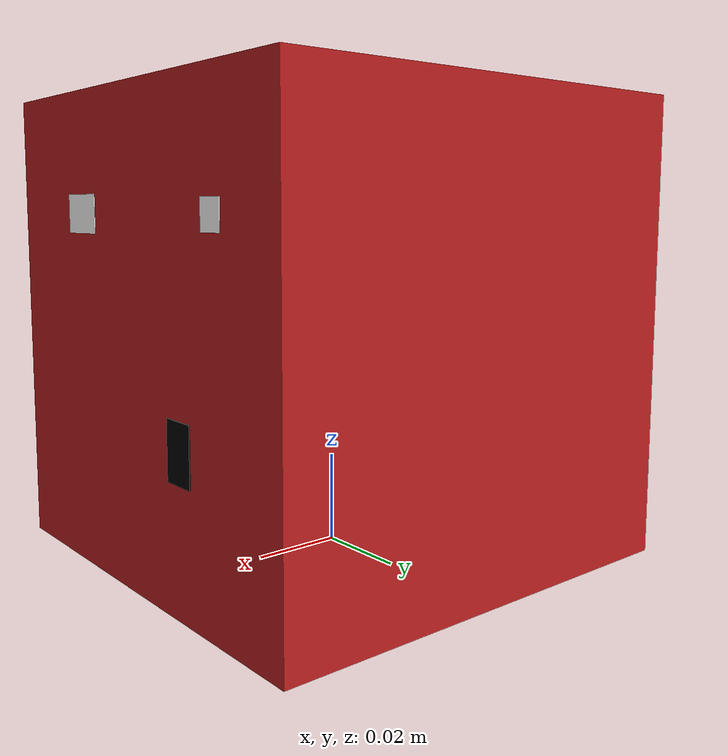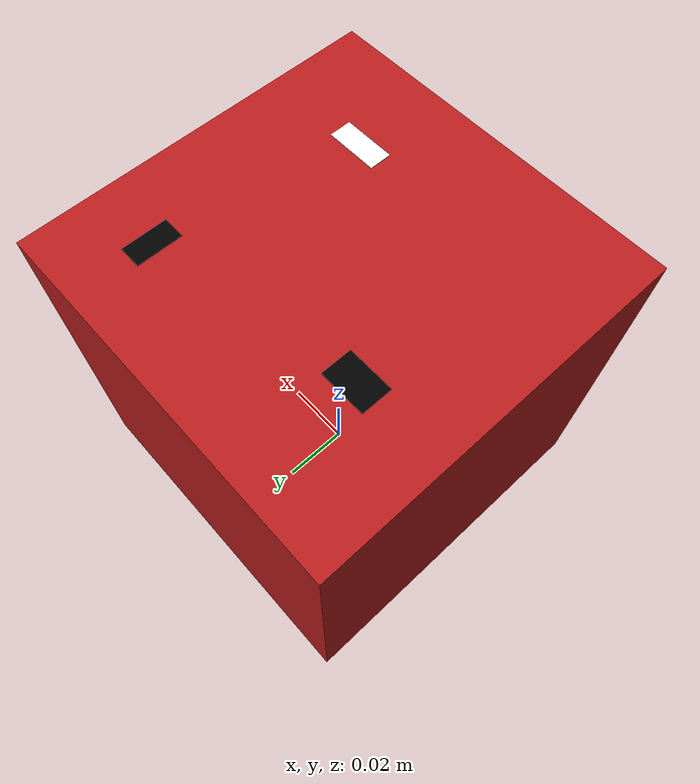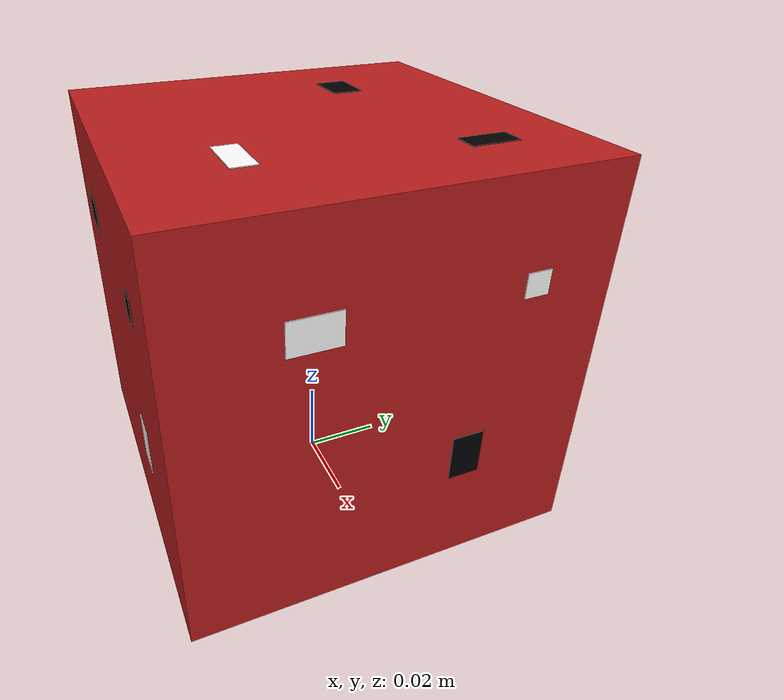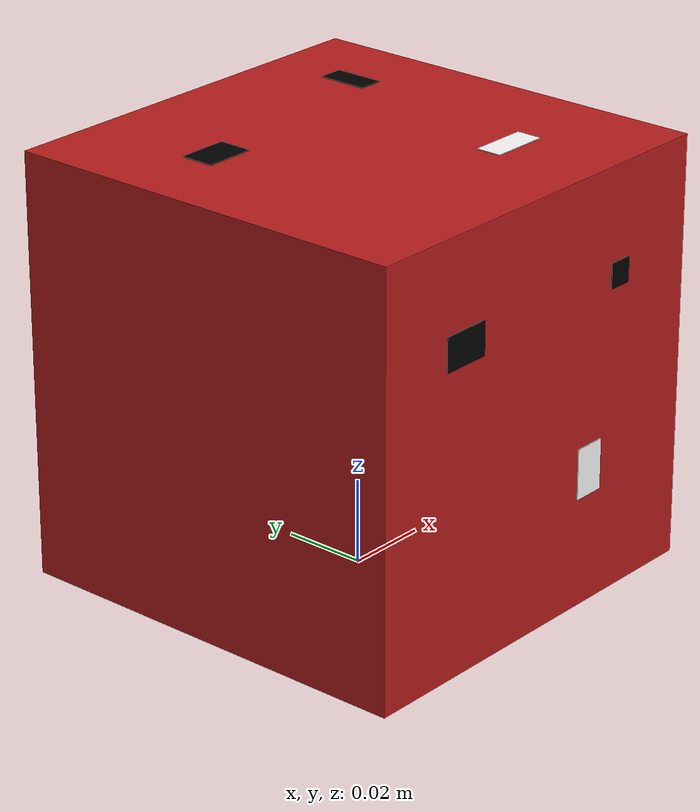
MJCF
<mujoco model="sim_object_box">

  <asset>

    <!-- Subtle checker texture to give surface depth without rotating the body -->
    <texture name="tex_red_grid" type="2d" builtin="checker"
             rgb1="0.85 0.15 0.15" rgb2="0.60 0.08 0.08" width="256" height="256"/>

    <material name="red_shiny" texture="tex_red_grid" texrepeat="2 2" texuniform="true"
              specular="1.0" shininess="0.6"/>

  </asset>

  <worldbody>

    <!-- Directional light source to cast distinct face shadows and specular highlights -->
    <light pos="0.3 -0.4 0.8" dir="-0.3 0.4 -0.8" castshadow="true" diffuse="0.9 0.9 0.9"/>

    <!-- Unrotated object body pose -->
    <body name="object" pos="0 0 0.05">
      <freejoint name="object_joint"/>

      <geom name="object_geom" type="box" size="0.05 0.05 0.05"
            material="red_shiny" mass="0.2" friction="1.0 0.005 0.0001" solref="0.004 1"/>

      <!-- Front face feature marks -->
      <geom name="front_mark_1" type="box"
            pos="-0.025 -0.0501 0.025"
            size="0.006 0.0001 0.004"
            rgba="0 0 0 1"
            mass="0"
            contype="0"
            conaffinity="0"/>

      <geom name="front_mark_2" type="box"
            pos="0.018 -0.0501 -0.018"
            size="0.004 0.0001 0.006"
            rgba="1 1 1 1"
            mass="0"
            contype="0"
            conaffinity="0"/>

      <geom name="front_mark_3" type="box"
            pos="0.027 -0.0501 0.025"
            size="0.003 0.0001 0.003"
            rgba="0 0 0 1"
            mass="0"
            contype="0"
            conaffinity="0"/>

      <!-- Right face feature marks -->
      <geom name="right_mark_1" type="box"
            pos="0.0501 -0.020 0.025"
            size="0.0001 0.006 0.004"
            rgba="1 1 1 1"
            mass="0"
            contype="0"
            conaffinity="0"/>

      <geom name="right_mark_2" type="box"
            pos="0.0501 0.018 -0.018"
            size="0.0001 0.004 0.006"
            rgba="0 0 0 1"
            mass="0"
            contype="0"
            conaffinity="0"/>

      <geom name="right_mark_3" type="box"
            pos="0.0501 0.030 0.025"
            size="0.0001 0.003 0.003"
            rgba="1 1 1 1"
            mass="0"
            contype="0"
            conaffinity="0"/>

      <!-- Top face feature marks -->
      <geom name="top_mark_1" type="box"
            pos="-0.025 0.018 0.0501"
            size="0.006 0.004 0.0001"
            rgba="0 0 0 1"
            mass="0"
            contype="0"
            conaffinity="0"/>

      <geom name="top_mark_2" type="box"
            pos="0.020 -0.025 0.0501"
            size="0.007 0.003 0.0001"
            rgba="1 1 1 1"
            mass="0"
            contype="0"
            conaffinity="0"/>

      <geom name="top_mark_3" type="box"
            pos="0.030 0.028 0.0501"
            size="0.003 0.006 0.0001"
            rgba="0 0 0 1"
            mass="0"
            contype="0"
            conaffinity="0"/>

    </body>
  </worldbody>

</mujoco>
